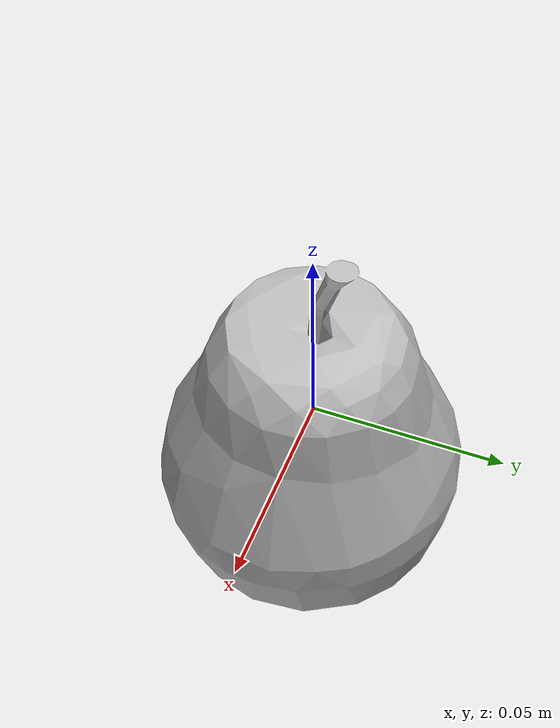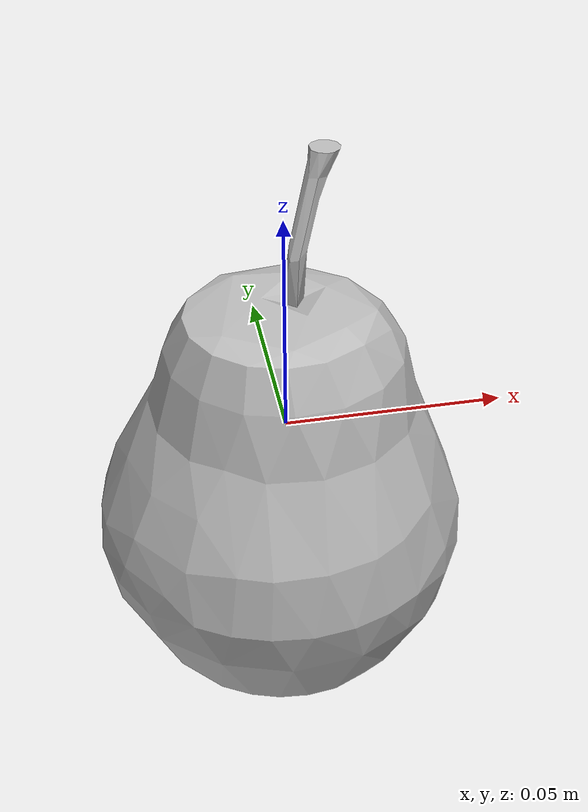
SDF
<?xml version="1.0" ?>
<sdf version="1.4">
    <model name='pear'>
      <link name='link'>
        <pose>0 0 0 0 0 0</pose>
        <inertial>
          <mass>0.3</mass>
          <inertia>
            <ixx>0.000363</ixx>
            <ixy>0</ixy>
            <ixz>0</ixz>
            <iyy>0.000363</iyy>
            <iyz>0</iyz>
            <izz>0.000363</izz>
          </inertia>
        </inertial>
        <visual name='pear'>
          <pose>0.0 0.0 0.0 0 0 0</pose>
          <geometry>
            <mesh>
              <uri>model://pear/meshes/pear.dae</uri>
            </mesh>
          </geometry>
          <material/>
        </visual>
        <collision name='pear'>
          <pose>0.0 0.0 -0.015 0 0 0</pose>
          <geometry>
            <sphere>
              <radius>0.055</radius>
            </sphere>
          </geometry>
          <max_contacts>10</max_contacts>
          <surface>
            <bounce>
              <restitution_coefficient>0.2</restitution_coefficient>
              <threshold>0</threshold>
            </bounce>
            <friction>
              <ode/>
            </friction>
            <contact>
              <ode>
                <max_vel>10</max_vel>
              </ode>
            </contact>
          </surface>
        </collision>
        <velocity_decay>
          <linear>0</linear>
          <angular>0</angular>
        </velocity_decay>
        <self_collide>0</self_collide>
        <kinematic>0</kinematic>
        <gravity>1</gravity>
      </link>
      <static>0</static>
    </model>
</sdf>
